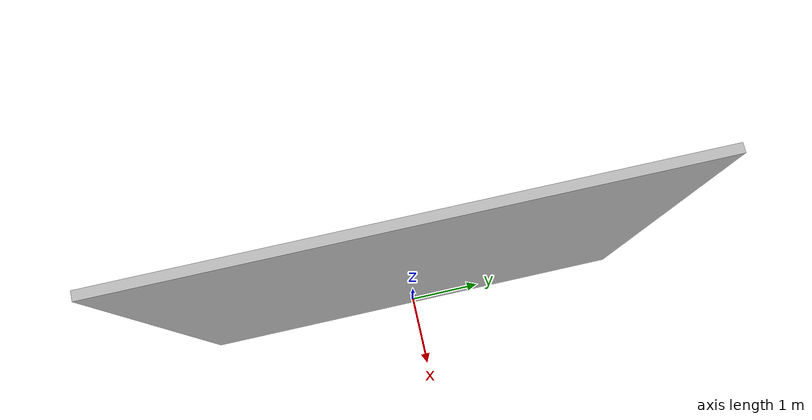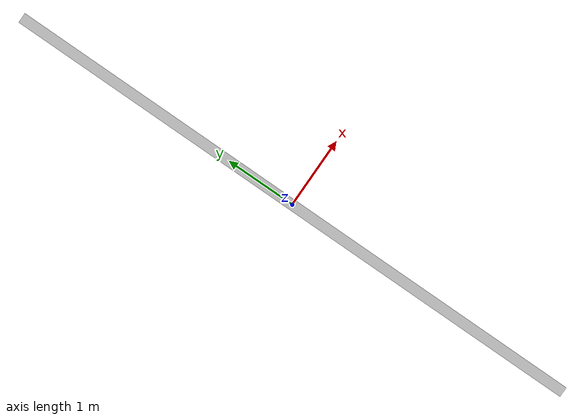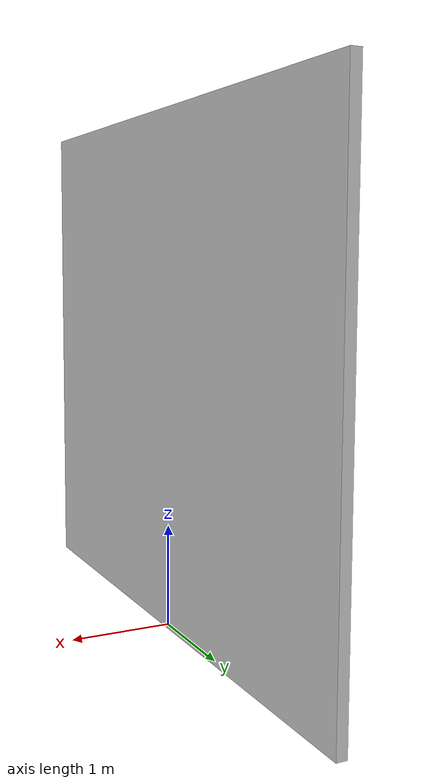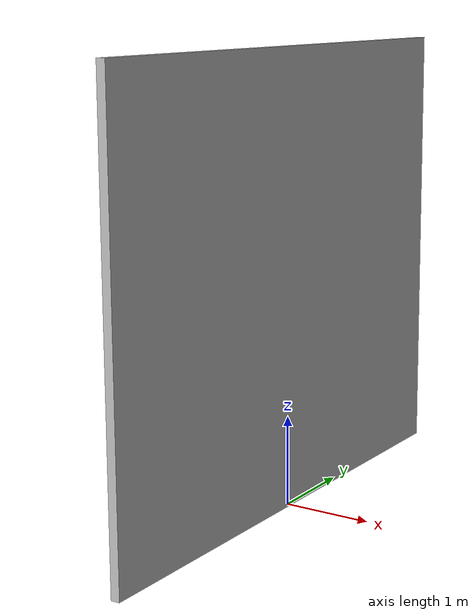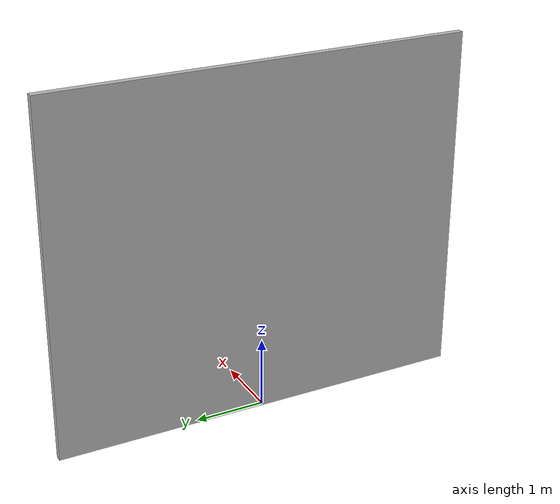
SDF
<?xml version="1.0" ?>

<sdf version="1.5">
<model name='concrete_10_600_500'>
      <static>1</static>
      <link name="link">
        <pose>0 0 2.5 0 0 0</pose>

        <visual name="visual">
          <geometry>
            <box>
              <size>0.1 6.0 5.0</size>
            </box>
          </geometry>
          <material>
            <script>
              <uri>model:///home/stibipet/mrs_workspace/src/radiation_nodes/gazebo_rad_obstacle/gazebo_models/materials/scripts</uri>
              <uri>model:///home/stibipet/mrs_workspace/src/radiation_nodes/gazebo_rad_obstacle/gazebo_models/materials/textures/</uri>
              <name>concrete/Image</name>
            </script>
          </material>
        </visual>

      </link>

      <plugin name='concrete' filename='libgazebo_rad_obstacle.so'>
        <depth>0.1</depth>
        <width>6.0</width>
        <height>5.0</height>
        <material>concrete</material>
        <density>2.3</density> <!-- g/cm^3 -->
        <mac60kev>0.266</mac60kev> <!-- cm^2/g -->
        <mac600kev>0.06236</mac600kev> <!-- cm^2/g -->
      </plugin>

    </model>
  </sdf>
